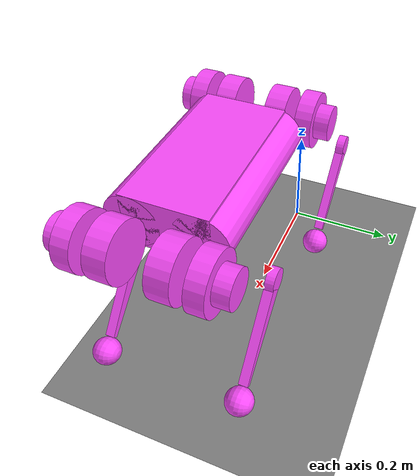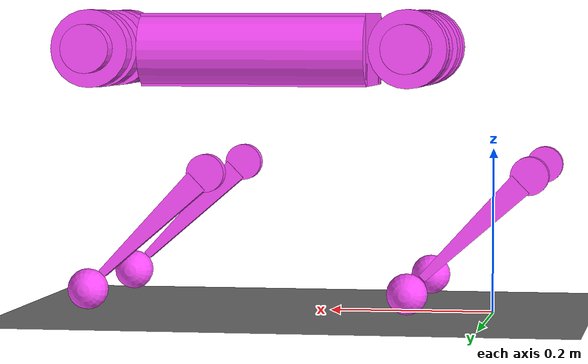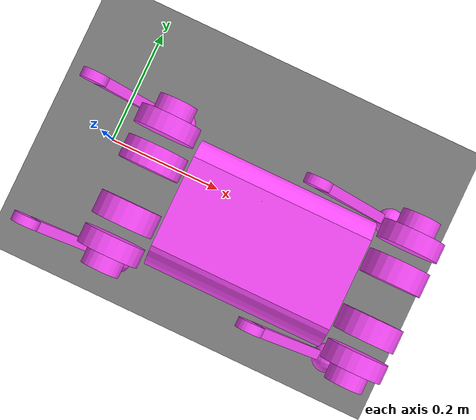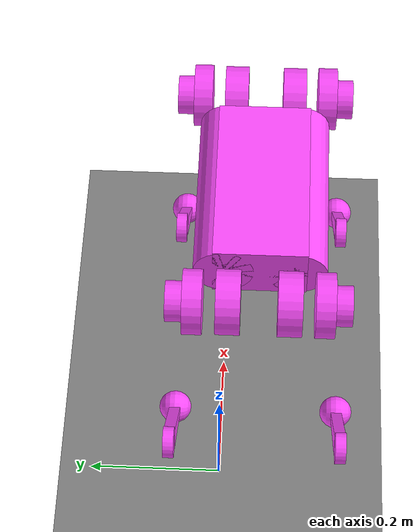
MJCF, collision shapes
<mujoco model="minicheetah-v1">
    <include file="scenes/scene.xml"/>
    <include file="assets/dep-v1.xml"/>
    <compiler meshdir="meshes/"/>
    <worldbody>
        <body name="minicheetah_frame" pos="0 0 0">
            <camera name="track" mode="trackcom" pos="0.25 -1.5 0.35" xyaxes="1 0 0 0 0 1"/>
            <joint name="Tx" pos="0 0 0" axis="1 0 0" limited="true" type="slide" range="-10 100"/>
            <joint name="Ty" pos="0 0 0" axis="0 1 0" limited="true" type="slide" range="-10 100"/>
            <joint name="Tz" pos="0 0 0" axis="0 0 1" limited="true" type="slide" range="-10 100"/>
            <joint name="Rx" pos="0 0 0" axis="1 0 0" limited="true" range="-20 20"/>
            <joint name="Ry" pos="0 0 0" axis="0 1 0" limited="true" range="-20 20"/>
            <joint name="Rz" pos="0 0 0" axis="0 0 1" limited="true" range="-20 100"/>
            <include file="assets/chain-v1.xml"/>
        </body>
    </worldbody>
</mujoco>

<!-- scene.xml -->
<mujocoinclude>
  <asset>
    <texture name="texplane" type="2d" builtin="checker" rgb1="1 1 1" rgb2="0 0 0" width="512" height="512"/>
    <material name="MatPlane" reflectance="0" texture="texplane" texrepeat="1 1" texuniform="true"/>
  </asset>
  <worldbody>
    <geom name="floor" pos="0 0 0" size="30 5 .1" conaffinity="1" contype="1" type="plane" material="MatPlane" condim="4"/>
    <site name="xaxis" pos=".5 0 0" size=".005 .5" type="capsule" rgba="1 0 0 .25" euler="0 1.57 0" group="3"/>
    <site name="yaxis" pos="0 .5 0" size=".005 .5" type="capsule" rgba="0 1 0 .25" euler="1.57 0 0" group="3"/>
  </worldbody>
</mujocoinclude>

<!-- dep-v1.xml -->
<mujocoinclude>
    <compiler angle="radian"/>
    <option timestep="0.002"/>

    <size njmax="-1" nconmax="-1"/>
    <default>
        <default class="minicheetah">
            <joint limited="true" range="-0.5 0.5" damping="0.7" armature="0.001"/>
            <geom contype="1" conaffinity="1" condim="4" group="1" margin="0.001" solref=".02 1" solimp =".8 .9 .01" />
            <motor ctrllimited="true" ctrlrange="-1.5 1.5"  forcelimited="false" forcerange="-0.5 0.5"/>
            <!-- belly-->
            <default class="belly">
                <geom contype="0" conaffinity="0" group="1" type="mesh" rgba="1 1 1 1" mass="0"/>
            </default>
            <!-- waist-->
            <default class="LF_waist">
                <geom mesh="LF_Waist" contype="0" conaffinity="0" group="1" type="mesh" rgba="0.3 0.3 1 1" mass="0"/>
            </default>
            <default class="LB_waist">
                <geom mesh="LB_Waist" contype="0" conaffinity="0" group="1" type="mesh" rgba="0.3 0.3 1 1" mass="0"/>
            </default>
            <default class="RF_waist">
                <geom mesh="RF_Waist" contype="0" conaffinity="0" group="1" type="mesh" rgba="0.3 0.3 1 1" mass="0"/>
            </default>
            <default class="RB_waist">
                <geom mesh="RB_Waist" contype="0" conaffinity="0" group="1" type="mesh" rgba="0.3 0.3 1 1" mass="0"/>
            </default>
            <!-- thigh-->
            <default class="LF_thigh">
                <geom mesh="LF_Thigh" contype="0" conaffinity="0" group="1" type="mesh" rgba="0.3 1 0.3 1" mass="0"/>
            </default>
            <default class="LB_thigh">
                <geom mesh="LB_Thigh" contype="0" conaffinity="0" group="1" type="mesh" rgba="0.3 1 0.3 1" mass="0"/>
            </default>
            <default class="RF_thigh">
                <geom mesh="RF_Thigh" contype="0" conaffinity="0" group="1" type="mesh" rgba="0.3 1 0.3 1" mass="0"/>
            </default>
            <default class="RB_thigh">
                <geom mesh="RB_Thigh" contype="0" conaffinity="0" group="1" type="mesh" rgba="0.3 1 0.3 1" mass="0"/>
            </default>
            <!-- foot-->
            <default class="LF_foot">
                <geom mesh="LF_Foot" contype="0" conaffinity="0" group="1" type="mesh" rgba="1 0.3 0.3 1" mass="0"/>
            </default>
            <default class="LB_foot">
                <geom mesh="LB_Foot" contype="0" conaffinity="0" group="1" type="mesh" rgba="1 0.3 0.3 1" mass="0"/>
            </default>
            <default class="RF_foot">
                <geom mesh="RF_Foot" contype="0" conaffinity="0" group="1" type="mesh" rgba="1 0.3 0.3 1" mass="0"/>
            </default>
            <default class="RB_foot">
                <geom mesh="RB_Foot" contype="0" conaffinity="0" group="1" type="mesh" rgba="1 0.3 0.3 1" mass="0"/>
            </default>
            <!-- collision-->
            <default class="collision">
                <geom contype="1" conaffinity="1" group="4" rgba="1 0.3 1 0.5"/>
            </default>
            <!-- site-->
            <site pos="0.049 0 0" group="1" type="sphere" size="0.006"/>
        </default>
    </default>
    <asset>
        <mesh name="Bulk" file="torso.STL"/>
        <mesh name="BulkCollision" file="torso.STL"/>
        <!-- waist-->
        <mesh name="LF_Waist" file="LF_waist.STL"/>
        <mesh name="LB_Waist" file="LB_waist.STL"/>
        <mesh name="RF_Waist" file="RF_waist.STL"/>
        <mesh name="RB_Waist" file="RB_waist.STL"/>
        <!-- thigh-->
        <mesh name="LF_Thigh" file="LF_thigh.STL"/>
        <mesh name="LB_Thigh" file="LB_thigh.STL"/>
        <mesh name="RF_Thigh" file="RF_thigh.STL"/>
        <mesh name="RB_Thigh" file="RB_thigh.STL"/>
        <!-- foot-->
        <mesh name="LF_Foot" file="LF_foot.STL"/>
        <mesh name="LB_Foot" file="LB_foot.STL"/>
        <mesh name="RF_Foot" file="RF_foot.STL"/>
        <mesh name="RB_Foot" file="RB_foot.STL"/>
        <!-- hitbox-->
        <mesh name="Thigh_Hitbox" file="thigh_hitbox.STL"/>
        <mesh name="Foot_Hitbox" file="foot_hitbox.STL"/>

    </asset>
    <actuator>
        <motor class="LF_waist" name="LF1" joint="LF1" gear = "7"/>
        <motor class="LF_thigh" name="LF2" joint="LF2" gear = "8"/>
        <motor class="LF_foot" name="LF3" joint="LF3" gear = "8"/>
        <motor class="RF_waist" name="RF1" joint="RF1" gear = "7"/>
        <motor class="RF_thigh" name="RF2" joint="RF2" gear = "8"/>
        <motor class="RF_foot" name="RF3" joint="RF3" gear = "8"/>
        <motor class="LB_waist" name="LB1" joint="LB1" gear = "7"/>
        <motor class="LB_thigh" name="LB2" joint="LB2" gear = "8"/>
        <motor class="LB_foot" name="LB3" joint="LB3" gear = "8"/>
        <motor class="RB_waist" name="RB1" joint="RB1" gear = "7"/>
        <motor class="RB_thigh" name="RB2" joint="RB2" gear = "8"/>
        <motor class="RB_foot" name="RB3" joint="RB3" gear = "8"/>
    </actuator>
</mujocoinclude>

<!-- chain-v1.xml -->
<mujocoinclude>
    <body childclass="minicheetah" name="minicheetah" pos="0 0 0.26" euler="1.570796 0 0 ">
        <!-- Torso 0.29131 gram -->
        <geom class="belly" name="Torso" mesh="Bulk"/>
        <geom class="collision" type="box"  pos="0.295 0.06 0.053" size = " 0.14 0.045 0.07"  euler="0 0 0" />
        <geom class="collision" type="cylinder"  pos="0.295 0.06 0.108" size = " 0.045 0.14 "  euler="0 1.570796 0" />
        <geom class="collision" type="cylinder"  pos="0.295 0.06 -0.0008" size = " 0.045 0.14 "  euler="0 1.570796 0" />
        <inertial pos="0.289667 0.0594486 0.0535759" quat="0.500058 0.499964 0.5 0.499978" mass="3.65048" diaginertia="0.00789259 0.00726155 0.00371262" />

        <!-- LF -->
        <body name="LF_waist" pos="0.44 0.061327 0.0035593" quat="-3.67321e-06 1.01715e-10 -2.7691e-05 1">
            <inertial pos="-0.042748 -1.12577e-06 -0.000690601" quat="0.497604 0.495869 -0.504062 0.50242" mass="0.434303" diaginertia="0.000202976 0.000135183 0.000102482" />
            <joint name="LF1" class="LF_waist" range="-0.3 0.3" pos="0 0 0" axis="1 0 0" />
            <geom class="LF_waist"/>
            <geom class="collision" type="cylinder"  pos = "-0.05 0 0.005"  size = " 0.048 0.018" />

            <body name="LF_thigh" pos="-0.052 0 -0.0112559" quat="6.14843e-09 0 0 -1">
                <inertial pos="-0.00707782 -0.00730769 -0.0459798" quat="-0.276681 0.636605 0.262517 0.670274" mass="0.714757" diaginertia="0.000560777 0.000376619 0.000258448" />
                <joint name="LF2" class="LF_thigh" pos="0 0 0" axis="0 0 1" />
                <geom class="LF_thigh"/>
                <geom class="collision" type="cylinder"  pos = "-0.00075 0.0005 -0.0355"  size = " 0.048 0.0145" />
                <geom class="collision" type="cylinder"  pos = "-0.00075 0.0005 -0.0605"  size = " 0.030 0.0145" />

                <body name="LF_foot" pos="-0.14953 -0.14957 0" quat="0.999977 0 0 0.00678495">
                    <inertial pos="0.0711352 -0.0710021 -0.0645764" quat="0.270554 0.6533 -0.270554 0.6533" mass="0.31588" diaginertia="0.000379995 0.000366058 6.46289e-05" />
                    <joint name="LF3" class="LF_foot" range="-0.3 0.6" pos="0 0 0" axis="0 0 1" />
                    <geom class="LF_foot"/>
                    <geom class="collision" type = "sphere" pos="0.145 -0.145 -0.065" size = "0.025" />
                    <geom class="collision" type = "mesh" mesh = "Foot_Hitbox" pos="-0.005 0.005 -0.065" euler="0 0 0.7900" />
                    <geom class="collision" type = "cylinder" pos="0.0 -0.00 -0.065" size = " 0.023 0.008" />
                </body>
            </body>
        </body>
        <!-- RF -->
        <body name="RF_waist" pos="0.44 0.0613268 0.103559" quat="6.14843e-09 0 0.000144707 1">
            <inertial pos="-0.042748 1.12578e-06 0.000690617" quat="0.50242 0.504062 -0.495869 0.497604" mass="0.434303" diaginertia="0.000202976 0.000135183 0.000102482" />
            <joint name="RF1" class="RF_waist" range="-0.3 0.3" pos="0 0 0" axis="1 0 0" />
            <geom class="RF_waist"/>
            <geom class="collision" type="cylinder"  pos = "-0.05 0 -0.005"  size = " 0.048 0.018" />

            <body name="RF_thigh" pos="-0.052 0 0" quat="6.14843e-09 0 0 -1">
                <inertial pos="-0.00730784 -0.00707873 0.0572357" quat="0.669593 0.264533 -0.635771 0.27832" mass="0.714757" diaginertia="0.000560777 0.00037662 0.000258448"  />
                <joint name="RF2" class="RF_thigh" pos="0 0 0" axis="0 0 1" />
                <geom class="RF_thigh"/>
                <geom class="collision" type="cylinder"  pos = "-0.00075 0.0005 0.0460"  size = " 0.048 0.0145" />
                <geom class="collision" type="cylinder"  pos = "-0.00075 0.0005 0.0710"  size = " 0.030 0.0145" />

                <body name="RF_foot" pos="-0.149573 -0.149533 0.0509376" quat="0.999974 0 0 0.00721738">
                    <inertial pos="0.0711173 -0.0710194 0.0248945" quat="0.270642 0.653265 -0.27064 0.653262" mass="0.31588" diaginertia="0.000379995 0.000366058 6.46289e-05" />
                    <joint name="RF3" class="RF_foot" range="-0.3 0.6" pos="0 0 0" axis="0 0 1" />
                    <geom class="RF_foot"/>
                    <geom class="collision" type = "sphere" pos="0.145 -0.145 0.025" size = "0.025" />
                    <geom class="collision" type = "mesh" mesh = "Foot_Hitbox" pos="-0.005 0.005 0.025" euler="0 0 0.7900" />
                    <geom class="collision" type = "cylinder" pos="0.0 -0.00 0.025" size = " 0.023 0.008" />

                </body>
            </body>
        </body>

        <!-- LB -->

        <body name="LB_waist" pos="0.0510039 0.0613268 0.00355933">
            <inertial pos="0.0582481 -1.12649e-06 -0.00069062" quat="0.497604 0.495869 -0.504062 0.50242" mass="0.434303" diaginertia="0.000202976 0.000135183 0.000102482" />
            <joint name="LB1" class="LB_waist" range="-0.3 0.3" pos="0 0 0" axis="1 0 0" />
            <geom class="LB_waist"/>
            <geom class="collision" type="cylinder"  pos = "0.05 0 0.005"  size = " 0.048 0.018" />

            <body name="LB_thigh" pos="0.048996 0 -0.011256">
                <inertial pos="-0.0070779 -0.0073077 -0.04598" quat="-0.276683 0.636603 0.26252 0.670273" mass="0.71476" diaginertia="0.000560776 0.000376622 0.000258452" />
                <joint name="LB2" class="LB_thigh" pos="0 0 0" axis="0 0 1" />
                <geom class="LB_thigh"/>
                <geom class="collision" type="cylinder"  pos = "-0.00075 0.0005 -0.0355"  size = " 0.048 0.0145" />
                <geom class="collision" type="cylinder"  pos = "-0.00075 0.0005 -0.0605"  size = " 0.030 0.0145" />

                <body name="LB_foot" pos="-0.14953 -0.14957 0" quat="0.999984 0 0 0.00559297">
                    <inertial pos="0.071135 -0.071002 -0.064577" quat="0.270555 0.653299 -0.270555 0.653299" mass="0.31588" diaginertia="0.00037999 0.00036605 6.463e-05"  />
                    <joint name="LB3" class="LB_foot" range="-0.3 0.6" pos="0 0 0" axis="0 0 1" />
                    <geom class="LB_foot"/>
                    <geom class="collision" type = "sphere" pos="0.145 -0.145 -0.065" size = "0.025" />
                    <geom class="collision" type = "mesh" mesh = "Foot_Hitbox" pos="-0.005 0.005 -0.065" euler="0 0 0.7900" />
                    <geom class="collision" type = "cylinder" pos="0.0 -0.00 -0.065" size = " 0.023 0.008" />

                </body>
            </body>
        </body>

        <!-- RB -->
        <body name="RB_waist" pos="0.0510039 0.0613268 0.103559">
            <inertial pos="0.0582481 1.12506e-06 0.000690598" quat="0.50242 0.504062 -0.495869 0.497604" mass="0.434303" diaginertia="0.000202976 0.000135183 0.000102482" />
            <joint name="RB1" class="RB_waist" range="-0.3 0.3" pos="0 0 0" axis="1 0 0" />
            <geom class="RB_waist"/>
            <geom class="collision" type="cylinder"  pos = "0.05 0 -0.005"  size = " 0.048 0.018" />

            <body name="RB_thigh" pos="0.05 0 0">
                <inertial pos="-0.00831173 -0.00707868 0.0572357" quat="0.669593 0.264533 -0.635771 0.27832" mass="0.714757" diaginertia="0.000560777 0.00037662 0.000258448"  />
                <joint name="RB2" class="RB_thigh"  pos="0 0 0" axis="0 0 1" />
                <geom class="RB_thigh"/>
                <geom class="collision" type="cylinder"  pos = "-0.00075 0.0005 0.0460"  size = " 0.048 0.0145" />
                <geom class="collision" type="cylinder"  pos = "-0.00075 0.0005 0.0710"  size = " 0.030 0.0145" />

                <body name="RB_foot" pos="-0.150577 -0.149533 0.051" quat="0.999984 0 0 0.00568627">
                    <inertial pos="0.0711172 -0.0710194 0.0248324" quat="0.270641 0.653264 -0.270641 0.653264" mass="0.31588" diaginertia="0.000379995 0.000366058 6.46289e-05"  />
                    <joint name="RB3" class="RB_foot" range="-0.3 0.6" pos="0 0 0" axis="0 0 1" />
                    <geom class="RB_foot"/>
                    <geom class="collision" type = "sphere" pos="0.145 -0.145 0.025" size = "0.025" />
                    <geom class="collision" type = "mesh" mesh = "Foot_Hitbox" pos="-0.005 0.005 0.025" euler="0 0 0.7900" />
                    <geom class="collision" type = "cylinder" pos="0.0 -0.00 0.025" size = " 0.023 0.008" />

                </body>
            </body>
        </body>
    </body>
</mujocoinclude>
